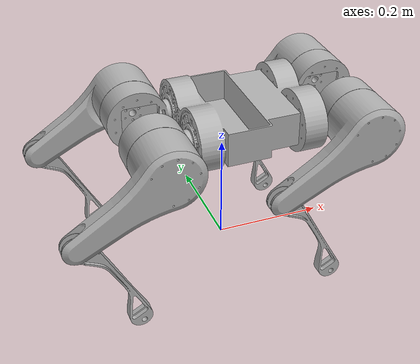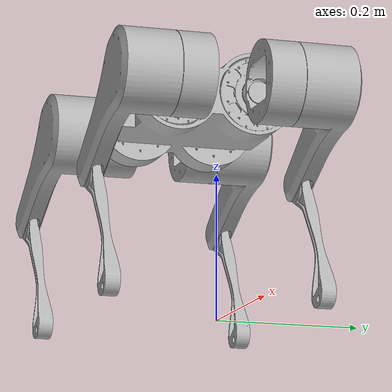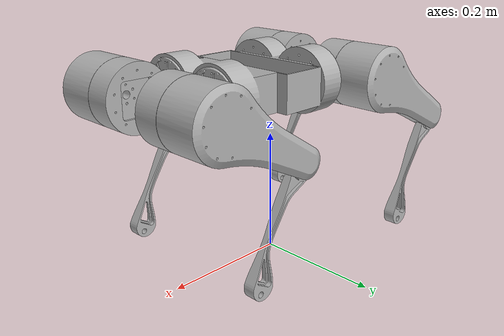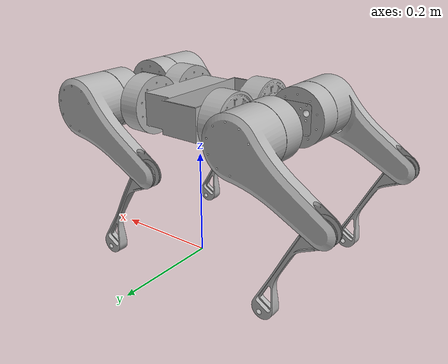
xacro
<?xml version="1.0" ?>
<robot name="vakra" xmlns:xacro="http://www.ros.org/wiki/xacro">

<xacro:include filename="$(find vakra_description)/urdf/materials.xacro" />
<xacro:include filename="$(find vakra_description)/urdf/vakra.trans" />
<xacro:include filename="$(find vakra_description)/gazebo/vakra_materials.gazebo" />
<xacro:include filename="$(find vakra_description)/gazebo/vakra_physics.gazebo" />
<xacro:include filename="$(find vakra_description)/gazebo/vakra_plugins.gazebo" />

<link name="base_footprint"/>

<link name="base_link">
  <inertial>
    <origin rpy="0 0 0" xyz="0.01651650630396252 -0.039387864784774386 0.2781670624228419"/>
    <mass value="2.379664751421723"/>
    <inertia ixx="0.011528" ixy="-3.2e-05" ixz="-0.000126" iyy="0.017554" iyz="4e-06" izz="0.024797"/>
  </inertial>
  <visual>
    <origin rpy="0 0 0" xyz="0 0 0"/>
    <geometry>
      <mesh filename="package://vakra_description/meshes/base_link.stl" scale="0.001 0.001 0.001"/>
    </geometry>
    <material name="silver"/>
  </visual>
  <collision>
    <origin rpy="0 0 0" xyz="0 0 0"/>
    <geometry>
      <mesh filename="package://vakra_description/meshes/base_link.stl" scale="0.001 0.001 0.001"/>
    </geometry>
  </collision>
</link>

<link name="femur1__1__1">
  <inertial>
    <origin rpy="0 0 0" xyz="-0.024333693559157793 -0.05106487776966842 -0.014045576694845352"/>
    <mass value="1.0823056277172005"/>
    <inertia ixx="0.00269" ixy="-0.000566" ixz="-0.001355" iyy="0.004988" iyz="-0.000327" izz="0.004254"/>
  </inertial>
  <visual>
    <origin rpy="0 0 0" xyz="-0.19536 0.112739 -0.280574"/>
    <geometry>
      <mesh filename="package://vakra_description/meshes/femur1__1__1.stl" scale="0.001 0.001 0.001"/>
    </geometry>
    <material name="silver"/>
  </visual>
  <collision>
    <origin rpy="0 0 0" xyz="-0.19536 0.112739 -0.280574"/>
    <geometry>
      <mesh filename="package://vakra_description/meshes/femur1__1__1.stl" scale="0.001 0.001 0.001"/>
    </geometry>
  </collision>
</link>

<link name="Shoulder1__1__1">
  <inertial>
    <origin rpy="0 0 0" xyz="0.05523873032400456 -0.003595547119901385 4.5635929407650266e-07"/>
    <mass value="0.29461843575635877"/>
    <inertia ixx="0.000442" ixy="-7e-06" ixz="0.0" iyy="0.000747" iyz="0.0" izz="0.000451"/>
  </inertial>
  <visual>
    <origin rpy="0 0 0" xyz="-0.14036 0.094239 -0.280574"/>
    <geometry>
      <mesh filename="package://vakra_description/meshes/Shoulder1__1__1.stl" scale="0.001 0.001 0.001"/>
    </geometry>
    <material name="silver"/>
  </visual>
  <collision>
    <origin rpy="0 0 0" xyz="-0.14036 0.094239 -0.280574"/>
    <geometry>
      <mesh filename="package://vakra_description/meshes/Shoulder1__1__1.stl" scale="0.001 0.001 0.001"/>
    </geometry>
  </collision>
</link>

<link name="femur1_1">
  <inertial>
    <origin rpy="0 0 0" xyz="-0.02433104362846289 0.05106454360242882 -0.014050736146083265"/>
    <mass value="1.0823056277172005"/>
    <inertia ixx="0.00269" ixy="0.000566" ixz="-0.001355" iyy="0.004988" iyz="0.000327" izz="0.004254"/>
  </inertial>
  <visual>
    <origin rpy="0 0 0" xyz="-0.195398 -0.032057 -0.279121"/>
    <geometry>
      <mesh filename="package://vakra_description/meshes/femur1_1.stl" scale="0.001 0.001 0.001"/>
    </geometry>
    <material name="silver"/>
  </visual>
  <collision>
    <origin rpy="0 0 0" xyz="-0.195398 -0.032057 -0.279121"/>
    <geometry>
      <mesh filename="package://vakra_description/meshes/femur1_1.stl" scale="0.001 0.001 0.001"/>
    </geometry>
  </collision>
</link>

<link name="Shoulder1_1">
  <inertial>
    <origin rpy="0 0 0" xyz="0.05523855175032666 0.003595212952661162 9.8001096682232e-08"/>
    <mass value="0.29461843575635877"/>
    <inertia ixx="0.000442" ixy="7e-06" ixz="-0.0" iyy="0.000747" iyz="0.0" izz="0.000451"/>
  </inertial>
  <visual>
    <origin rpy="0 0 0" xyz="-0.140398 -0.013557 -0.279121"/>
    <geometry>
      <mesh filename="package://vakra_description/meshes/Shoulder1_1.stl" scale="0.001 0.001 0.001"/>
    </geometry>
    <material name="silver"/>
  </visual>
  <collision>
    <origin rpy="0 0 0" xyz="-0.140398 -0.013557 -0.279121"/>
    <geometry>
      <mesh filename="package://vakra_description/meshes/Shoulder1_1.stl" scale="0.001 0.001 0.001"/>
    </geometry>
  </collision>
</link>

<link name="femur2__1__1">
  <inertial>
    <origin rpy="0 0 0" xyz="-0.024333693559123293 -0.051064877769666894 -0.014045576694855233"/>
    <mass value="1.0823056277172005"/>
    <inertia ixx="0.00269" ixy="-0.000566" ixz="-0.001355" iyy="0.004988" iyz="-0.000327" izz="0.004254"/>
  </inertial>
  <visual>
    <origin rpy="0 0 0" xyz="0.156378 0.112739 -0.280574"/>
    <geometry>
      <mesh filename="package://vakra_description/meshes/femur2__1__1.stl" scale="0.001 0.001 0.001"/>
    </geometry>
    <material name="silver"/>
  </visual>
  <collision>
    <origin rpy="0 0 0" xyz="0.156378 0.112739 -0.280574"/>
    <geometry>
      <mesh filename="package://vakra_description/meshes/femur2__1__1.stl" scale="0.001 0.001 0.001"/>
    </geometry>
  </collision>
</link>

<link name="Shoulder2__1__1">
  <inertial>
    <origin rpy="0 0 0" xyz="-0.05523808741171643 -0.0035955471198991784 3.583390427164268e-07"/>
    <mass value="0.29461843575635877"/>
    <inertia ixx="0.000442" ixy="7e-06" ixz="0.0" iyy="0.000747" iyz="-0.0" izz="0.000451"/>
  </inertial>
  <visual>
    <origin rpy="0 0 0" xyz="0.101378 0.094239 -0.280574"/>
    <geometry>
      <mesh filename="package://vakra_description/meshes/Shoulder2__1__1.stl" scale="0.001 0.001 0.001"/>
    </geometry>
    <material name="silver"/>
  </visual>
  <collision>
    <origin rpy="0 0 0" xyz="0.101378 0.094239 -0.280574"/>
    <geometry>
      <mesh filename="package://vakra_description/meshes/Shoulder2__1__1.stl" scale="0.001 0.001 0.001"/>
    </geometry>
  </collision>
</link>

<link name="femur2_1">
  <inertial>
    <origin rpy="0 0 0" xyz="-0.024330865054751655 0.051064106620084426 -0.014050475808138785"/>
    <mass value="1.0823056277172005"/>
    <inertia ixx="0.00269" ixy="0.000566" ixz="-0.001355" iyy="0.004988" iyz="0.000327" izz="0.004254"/>
  </inertial>
  <visual>
    <origin rpy="0 0 0" xyz="0.156378 -0.032261 -0.280574"/>
    <geometry>
      <mesh filename="package://vakra_description/meshes/femur2_1.stl" scale="0.001 0.001 0.001"/>
    </geometry>
    <material name="silver"/>
  </visual>
  <collision>
    <origin rpy="0 0 0" xyz="0.156378 -0.032261 -0.280574"/>
    <geometry>
      <mesh filename="package://vakra_description/meshes/femur2_1.stl" scale="0.001 0.001 0.001"/>
    </geometry>
  </collision>
</link>

<link name="Shoulder2_1">
  <inertial>
    <origin rpy="0 0 0" xyz="-0.05523808741171665 0.003594775970317118 4.5635927997667025e-07"/>
    <mass value="0.29461843575635877"/>
    <inertia ixx="0.000442" ixy="-7e-06" ixz="-0.0" iyy="0.000747" iyz="-0.0" izz="0.000451"/>
  </inertial>
  <visual>
    <origin rpy="0 0 0" xyz="0.101378 -0.013761 -0.280574"/>
    <geometry>
      <mesh filename="package://vakra_description/meshes/Shoulder2_1.stl" scale="0.001 0.001 0.001"/>
    </geometry>
    <material name="silver"/>
  </visual>
  <collision>
    <origin rpy="0 0 0" xyz="0.101378 -0.013761 -0.280574"/>
    <geometry>
      <mesh filename="package://vakra_description/meshes/Shoulder2_1.stl" scale="0.001 0.001 0.001"/>
    </geometry>
  </collision>
</link>

<link name="tibia1_1">
  <inertial>
    <origin rpy="0 0 0" xyz="0.05857634983569892 -0.005999928812024283 -0.09016228024464047"/>
    <mass value="0.147939411240314034"/>
    <inertia ixx="0.000245" ixy="-0.0" ixz="0.000131" iyy="0.000323" iyz="0.0" izz="8e-05"/>
  </inertial>
  <visual>
    <origin rpy="0 0 0" xyz="-0.035183 -0.110057 -0.186621"/>
    <geometry>
      <mesh filename="package://vakra_description/meshes/tibia1_1.stl" scale="0.001 0.001 0.001"/>
    </geometry>
    <material name="silver"/>
  </visual>
  <collision>
    <origin rpy="0 0 0" xyz="-0.035183 -0.110057 -0.186621"/>
    <geometry>
      <mesh filename="package://vakra_description/meshes/tibia1_1.stl" scale="0.001 0.001 0.001"/>
    </geometry>
  </collision>
</link>

<link name="tibia2_1">
  <inertial>
    <origin rpy="0 0 0" xyz="0.05857552840935376 -0.0060003657943698 -0.09016201990659753"/>
    <mass value="0.14793941124031404"/>
    <inertia ixx="0.000245" ixy="-0.0" ixz="0.000131" iyy="0.000323" iyz="0.0" izz="8e-05"/>
  </inertial>
  <visual>
    <origin rpy="0 0 0" xyz="0.316592 -0.110261 -0.188074"/>
    <geometry>
      <mesh filename="package://vakra_description/meshes/tibia2_1.stl" scale="0.001 0.001 0.001"/>
    </geometry>
    <material name="silver"/>
  </visual>
  <collision>
    <origin rpy="0 0 0" xyz="0.316592 -0.110261 -0.188074"/>
    <geometry>
      <mesh filename="package://vakra_description/meshes/tibia2_1.stl" scale="0.001 0.001 0.001"/>
    </geometry>
  </collision>
</link>

<link name="tibia2__1__1">
  <inertial>
    <origin rpy="0 0 0" xyz="0.058575528409412825 -0.006000365794369661 -0.0901620199066957"/>
    <mass value="0.14793941124031404"/>
    <inertia ixx="0.000245" ixy="-0.0" ixz="0.000131" iyy="0.000323" iyz="0.0" izz="8e-05"/>
  </inertial>
  <visual>
    <origin rpy="0 0 0" xyz="0.316592 0.178739 -0.188074"/>
    <geometry>
      <mesh filename="package://vakra_description/meshes/tibia2__1__1.stl" scale="0.001 0.001 0.001"/>
    </geometry>
    <material name="silver"/>
  </visual>
  <collision>
    <origin rpy="0 0 0" xyz="0.316592 0.178739 -0.188074"/>
    <geometry>
      <mesh filename="package://vakra_description/meshes/tibia2__1__1.stl" scale="0.001 0.001 0.001"/>
    </geometry>
  </collision>
</link>

<link name="tibia1__1__1">
  <inertial>
    <origin rpy="0 0 0" xyz="0.05857552840939162 -0.006000365794366358 -0.09016201990669247"/>
    <mass value="0.14793941124031403"/>
    <inertia ixx="0.000245" ixy="-0.0" ixz="0.000131" iyy="0.000323" iyz="0.0" izz="8e-05"/>
  </inertial>
  <visual>
    <origin rpy="0 0 0" xyz="-0.035146 0.178739 -0.188074"/>
    <geometry>
      <mesh filename="package://vakra_description/meshes/tibia1__1__1.stl" scale="0.001 0.001 0.001"/>
    </geometry>
    <material name="silver"/>
  </visual>
  <collision>
    <origin rpy="0 0 0" xyz="-0.035146 0.178739 -0.188074"/>
    <geometry>
      <mesh filename="package://vakra_description/meshes/tibia1__1__1.stl" scale="0.001 0.001 0.001"/>
    </geometry>
  </collision>
</link>

<joint name="footprint_to_base_link" type="fixed">
  <parent link="base_footprint"/>
  <child link="base_link"/>
</joint>

<joint name="rff" type="revolute">
  <origin rpy="0 0 0" xyz="0.055 -0.0185 0.0"/>
  <parent link="Shoulder1__1__1"/>
  <child link="femur1__1__1"/>
  <axis xyz="0.0 1.0 0.0"/>
  <limit effort="15.0" lower="-3.0" upper="3.0" velocity="5.0" />
  <dynamics damping="0.7" />
</joint>

<joint name="rfs" type="revolute">
  <origin rpy="0 0 0" xyz="0.14036 -0.094239 0.280574"/>
  <parent link="base_link"/>
  <child link="Shoulder1__1__1"/>
  <axis xyz="1.0 -0.0 -0.0"/>
  <limit effort="15.0" lower="-3.0" upper="3.0" velocity="5.0" />
  <dynamics damping="0.7" />
</joint>

<joint name="lff" type="revolute">
  <origin rpy="0 0 0" xyz="0.055 0.0185 0.0"/>
  <parent link="Shoulder1_1"/>
  <child link="femur1_1"/>
  <axis xyz="-0.0 -2.0 -0.0"/>
  <limit effort="15.0" lower="-3.0" upper="3.0" velocity="5.0" />
  <dynamics damping="0.7" />
</joint>

<joint name="lfs" type="revolute">
  <origin rpy="0 0 0" xyz="0.140398 0.013557 0.279121"/>
  <parent link="base_link"/>
  <child link="Shoulder1_1"/>
  <axis xyz="1.0 0.0 -0.0"/>
  <limit effort="15.0" lower="-3.0" upper="3.0" velocity="5.0" />
  <dynamics damping="0.7" />
</joint>

<joint name="rbf" type="revolute">
  <origin rpy="0 0 0" xyz="-0.055 -0.0185 0.0"/>
  <parent link="Shoulder2__1__1"/>
  <child link="femur2__1__1"/>
  <axis xyz="0.0 1.0 -0.0"/>
  <limit effort="15.0" lower="-3.0" upper="3.0" velocity="5.0" />
  <dynamics damping="0.7" />
</joint>

<joint name="rbs" type="revolute">
  <origin rpy="0 0 0" xyz="-0.101378 -0.094239 0.280574"/>
  <parent link="base_link"/>
  <child link="Shoulder2__1__1"/>
  <axis xyz="1.0 0.0 -0.0"/>
  <limit effort="15.0" lower="-3.0" upper="3.0" velocity="5.0" />
  <dynamics damping="0.7" />
</joint>

<joint name="lbf" type="revolute">
  <origin rpy="0 0 0" xyz="-0.055 0.0185 0.0"/>
  <parent link="Shoulder2_1"/>
  <child link="femur2_1"/>
  <axis xyz="0.0 -2.0 0.0"/>
  <limit effort="15.0" lower="-3.0" upper="3.0" velocity="5.0" />
  <dynamics damping="0.7" />
</joint>

<joint name="lbs" type="revolute">
  <origin rpy="0 0 0" xyz="-0.101378 0.013761 0.280574"/>
  <parent link="base_link"/>
  <child link="Shoulder2_1"/>
  <axis xyz="1.0 0.0 -0.0"/>
  <limit effort="15.0" lower="-3.0" upper="3.0" velocity="5.0" />
  <dynamics damping="0.7" />
</joint>

<joint name="lft" type="revolute">
  <origin rpy="0 0 0" xyz="-0.160215 0.078 -0.0925"/>
  <parent link="femur1_1"/>
  <child link="tibia1_1"/>
  <axis xyz="0.0 -2.0 -0.0"/>
  <limit effort="15.0" lower="-3.0" upper="3.0" velocity="5.0" />
  <dynamics damping="0.7" />
</joint>

<joint name="lbt" type="revolute">
  <origin rpy="0 0 0" xyz="-0.160214 0.078 -0.0925"/>
  <parent link="femur2_1"/>
  <child link="tibia2_1"/>
  <axis xyz="0.0 -2.0 -0.0"/>
  <limit effort="15.0" lower="-3.0" upper="3.0" velocity="5.0" />
  <dynamics damping="0.7" />
</joint>

<joint name="rbt" type="revolute">
  <origin rpy="0 0 0" xyz="-0.160214 -0.066 -0.0925"/>
  <parent link="femur2__1__1"/>
  <child link="tibia2__1__1"/>
  <axis xyz="0.0 -2.0 0.0"/>
  <limit effort="15.0" lower="-3.0" upper="3.0" velocity="5.0" />
  <dynamics damping="0.7" />
</joint>

<joint name="rft" type="revolute">
  <origin rpy="0 0 0" xyz="-0.160214 -0.066 -0.0925"/>
  <parent link="femur1__1__1"/>
  <child link="tibia1__1__1"/>
  <axis xyz="-0.0 -2.0 -0.0"/>
  <limit effort="15.0" lower="-3.0" upper="3.0" velocity="5.0" />
  <dynamics damping="0.7" />
</joint>

</robot>

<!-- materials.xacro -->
<robot name="vakra" xmlns:xacro="http://www.ros.org/wiki/xacro" >

<material name="silver">
  <color rgba="0.700 0.700 0.700 1.000"/>
</material>

</robot>

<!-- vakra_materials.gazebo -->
<robot name="vakra" xmlns:xacro="http://www.ros.org/wiki/xacro" >

<xacro:property name="Black" value="Gazebo/Black" />
<xacro:property name="Green" value="Gazebo/Green" />
<xacro:property name="Silver" value="Gazebo/Silver" />
<xacro:property name="Blue" value="Gazebo/Blue" />

<gazebo reference="base_link">
  <material>${Black}</material>
</gazebo>

<gazebo reference="femur1__1__1">
  <material>${Blue}</material>
</gazebo>

<gazebo reference="Shoulder1__1__1">
  <material>${Green}</material>
</gazebo>

<gazebo reference="femur1_1">
  <material>${Blue}</material>
</gazebo>

<gazebo reference="Shoulder1_1">
  <material>${Green}</material>
</gazebo>

<gazebo reference="femur2__1__1">
  <material>${Blue}</material>
</gazebo>

<gazebo reference="Shoulder2__1__1">
  <material>${Green}</material>
</gazebo>

<gazebo reference="femur2_1">
  <material>${Blue}</material>
</gazebo>

<gazebo reference="Shoulder2_1">
  <material>${Green}</material>
</gazebo>

<gazebo reference="tibia1_1">
  <material>${Silver}</material>
</gazebo>

<gazebo reference="tibia2_1">
  <material>${Silver}</material>
</gazebo>

<gazebo reference="tibia2__1__1">
  <material>${Silver}</material>
</gazebo>

<gazebo reference="tibia1__1__1">
  <material>${Silver}</material>
</gazebo>

</robot>
